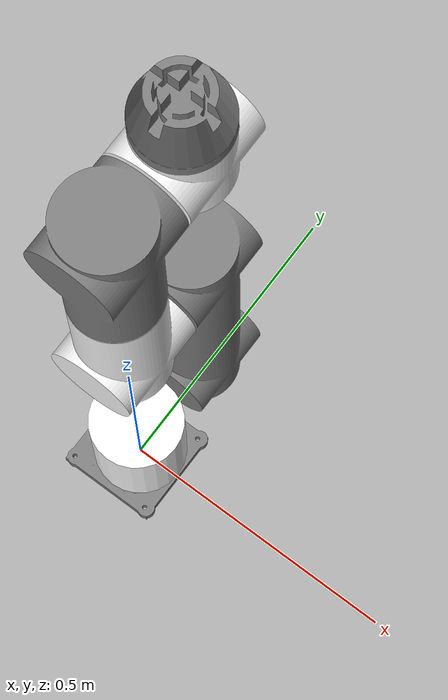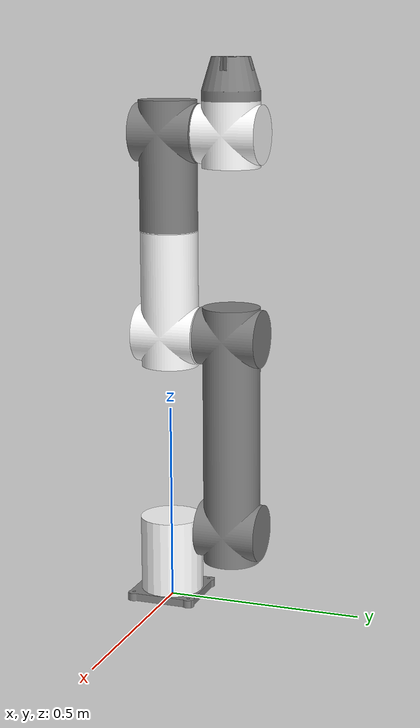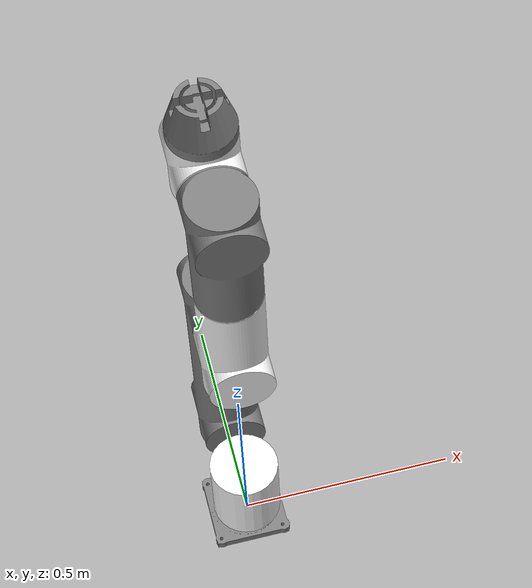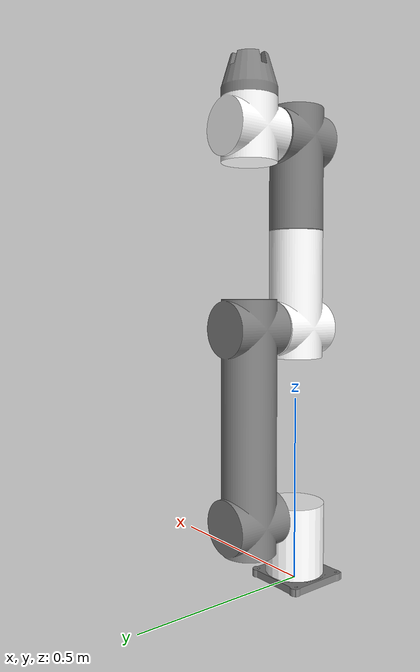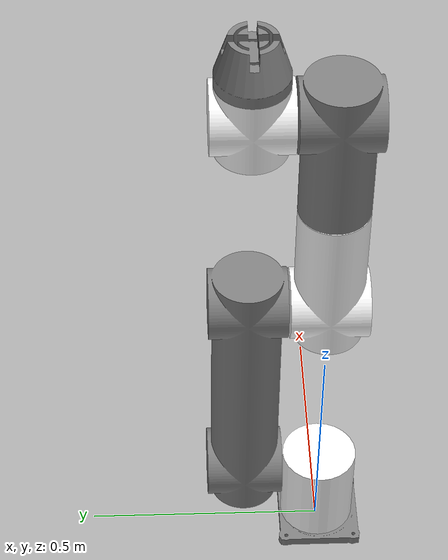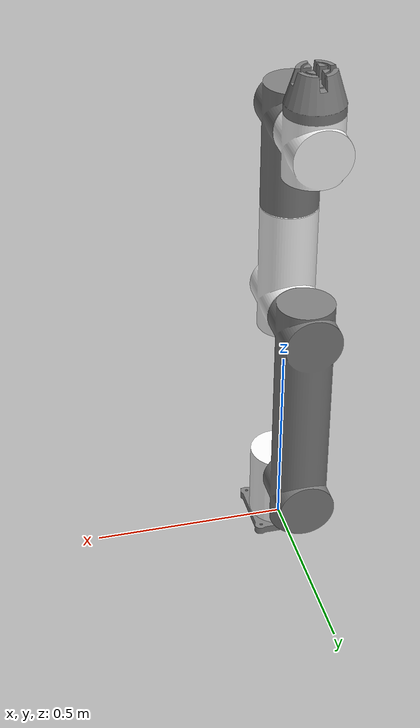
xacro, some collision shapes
<?xml version="1.0"?>
<robot xmlns:xacro="http://www.ros.org/wiki/xacro" name="armA" >

  <xacro:arg name="color"   default="blue"/>
  <xacro:arg name="gripper" default="none"/>
  <xacro:arg name="namespace" default=""/>

  <xacro:include filename="$(find arm_01)/description/xacro/armA_core.xacro" />
  <xacro:armA namespace="$(arg namespace)"/>

  <!-- World fixed joint-->
  <link name="world" />
  <joint name="world_fixed" type="fixed">
    <origin xyz="0 0 0" rpy="0 0 0"/>
    <parent link="world"/>
    <child link="base_0"/>
  </joint>

</robot>

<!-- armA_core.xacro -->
<robot name="armA" xmlns:xacro="http://www.ros.org/wiki/xacro">

    <xacro:include filename="$(find arm_01)/description/xacro/armA.gazebo_config_control.xacro" />
    <xacro:include filename="$(find arm_01)/description/xacro/armA.transmission.xacro" />
    <xacro:include filename="$(find arm_01)/description/xacro/armA.internal_config.xacro" />
    <xacro:include filename="$(find arm_01)/description/xacro/armA.bumper_config.xacro" />

    <xacro:macro name="armA" params="namespace">

        <!-- Base -->
        <link name="base_0">
            <inertial>
                <mass value="3.635"/>
                <origin xyz="4e-06   -0.001     0.082"/>
                <inertia ixx="0.02216" ixy="5.8e-06" ixz="6.2e-06" iyy="0.02"
                    iyz="-5.3e-05"
                    izz="0.02"/>
            </inertial>
            <visual>
                <origin rpy="0 0 0" xyz="0 0 0" />
                <geometry>
                    <mesh filename="file:///$(find arm_01)/description/meshes/armA/armA_0.stl"
                        scale="0.004 0.004 0.004" />
                </geometry>
                <material name="gray">
                    <color rgba="0.5 0.5 0.5 1"/>
                </material>
            </visual>
            <collision>
                <geometry>
                    <mesh filename="file:///$(find arm_01)/description/meshes/armA/armA_0.stl"
                        scale="0.004 0.004 0.004" />
                </geometry>
              </collision>
        </link>

        <!-- joint 1 -->
        <joint name="joint1" type="revolute">
            <parent link="base_0" />
            <child link="link1" />
            <origin rpy="0 0 0" xyz="0 0 0.114" />
            <axis xyz="0 0 1" />
            <limit effort="411" lower="-6.2832" upper="6.2832" velocity="3.1416"/>
            <dynamics damping="60.0" friction="4.0" />
        </joint>

        <!-- Link 1 -->
        <link name="link1">
            <inertial>
                <mass value="7.9"/>
                <origin xyz="4.4e-05    0.029982    -0.01112"/>
                <inertia ixx="0.046" ixy="1.28e-05" ixz="-3.6e-05" iyy="0.03"
                    iyz="-0.003"
                    izz="0.04"/>
            </inertial>
            <collision>
                <geometry>
                    <cylinder radius="0.08" length="0.2"/>
                </geometry>
            </collision>
            <visual>
                <origin rpy="0 0 0" xyz="0 0 0" />
                <geometry>
                    <mesh filename="file:///$(find arm_01)/description/meshes/armA/armA_1.stl"
                        scale="0.004 0.004 0.004" />
                </geometry>
                <material name="white">
                    <color rgba="1 1 1 1"/>
                </material>
            </visual>
        </link>

        <!-- joint2 -->
        <!-- origin rpy="0 -1.571 -1.571" xyz="0 0.040 0" / -->
        <joint name="joint2" type="revolute">
            <parent link="link1" />
            <child link="link2" />
            <origin rpy="0 0 0" xyz="0 0.082 0.080" />
            <axis xyz="0 1 0" />
            <limit effort="411" lower="-6.2832" upper="6.2832" velocity="3.1416"/>
            <dynamics damping="50.0" friction="3.0" />
        </joint>

        <!-- Link 2 -->
        <link name="link2">
            <inertial>
                <mass value="10.985"/>
                <origin xyz="0.2    0.0014     0.13"/>
                <inertia ixx="0.04" ixy="-0.005" ixz="-0.01" iyy="0.7" iyz="-2.8e-05"
                    izz="0.67"/>
            </inertial>
            <collision>
                <origin rpy="0 -1.571 0" xyz="0.3 0 0.1525" />
                <geometry>
                    <cylinder radius="0.08" length="0.6"/>
                </geometry>
            </collision>
            <visual>
                <origin rpy="0 0 0" xyz="0 0.082 -0.082" />
                <geometry>
                    <mesh filename="file:///$(find arm_01)/description/meshes/armA/armA_2.stl"
                        scale="0.004 0.004 0.004" />
                </geometry>
                <material name="gray">
                    <color rgba="0.5 0.5 0.5 1"/>
                </material>
            </visual>
        </link>

        <joint name="joint3" type="revolute">
            <parent link="link2" />
            <child link="link3" />
            <origin rpy="0 0 0" xyz="0 -0.082 0.500" />
            <axis xyz="0 1 0" />
            <limit effort="194" lower="-2.7925" upper="2.7925" velocity="3.1416"/>
            <dynamics damping="40.0" friction="2.0"/>
        </joint>

        <!-- cylinder radius="0.08" length="0.2"/ -->

        <link name="link3">
            <inertial>
                <mass value="2.881"/>
                <origin xyz="8.5e-05   -0.0025    0.03"/>
                <inertia ixx="0.013" ixy="-5.4e-06" ixz="1.64e-05" iyy="0.01"
                    iyz="-0.0002"
                    izz="0.008"/>
            </inertial>
            <collision>
                <geometry>
                    <mesh filename="file:///$(find arm_01)/description/meshes/armA/armA_3.stl"
                        scale="0.004 0.004 0.004" />
                </geometry>
            </collision>
            <visual>
                <origin rpy="0 0 0" xyz="0 0 -0.080" />
                <geometry>
                    <mesh filename="file:///$(find arm_01)/description/meshes/armA/armA_3.stl"
                        scale="0.004 0.004 0.004" />
                </geometry>
                <material name="white">
                    <color rgba="1 1 1 1"/>
                </material>
            </visual>
        </link>

        <!-- joint4 -->
        <joint name="joint4" type="revolute">
            <parent link="link3" />
            <child link="link4" />
            <origin rpy="0 0 0" xyz="0 0 0.262" />
            <axis xyz="0 0 1" />
            <limit effort="50" lower="-6.2832" upper="6.2832" velocity="6.2832"/>
            <dynamics damping="20.0" friction="1.0" />
        </joint>

        <link name="link4">
            <inertial>
                <mass value="3.273"/>
                <origin xyz="-9.6e-05    0.085    -0.14"/>
                <inertia ixx="0.12" ixy="2.4e-05" ixz="2.5e-05" iyy="0.11" iyz="-0.028"
                    izz="0.017"/>
            </inertial>
            <collision>
                <origin rpy="-0.46 0 0" xyz="0 0.075 -0.2" />
                <geometry>
                    <cylinder radius="0.05" length="0.4"/>
                </geometry>
            </collision>
            <visual>
                <origin rpy="0 0 0" xyz="0 0 0" />
                <geometry>
                    <mesh filename="file:///$(find arm_01)/description/meshes/armA/armA_4.stl"
                        scale="0.004 0.004 0.004" />
                </geometry>
                <material name="gray">
                    <color rgba="0.5 0.5 0.5 1"/>
                </material>
            </visual>
        </link>

        <!-- origin rpy="-1.571 0 0" xyz="0 0 0" / -->

        <joint name="joint5" type="revolute">
            <parent link="link4" />
            <child link="link5" />
            <origin rpy="0 0 0" xyz="0 0.082 0.24" />
            <axis xyz="0 1 0" />
            <limit effort="50" lower="-6.2832" upper="6.2832" velocity="6.2832"/>
            <dynamics damping="10.0" friction="1.0" />
        </joint>

        <link name="link5">
            <inertial>
                <mass value="2.141"/>
                <origin xyz="0.0001   -0.003     0.015"/>
                <inertia ixx="0.013" ixy="-4.7e-06" ixz="8.6e-06" iyy="0.007"
                    iyz="-6.0e-05"
                    izz="0.009"/>
            </inertial>
            <collision>
                <origin rpy="1.571 0 0" xyz="0 0 0" />
                <geometry>
                    <cylinder radius="0.06" length="0.15"/>
                </geometry>
            </collision>
            <visual>
                <origin rpy="0 0 0" xyz="0 0.082 -0.08" />
                <geometry>
                    <mesh filename="file:///$(find arm_01)/description/meshes/armA/armA_5.stl"
                        scale="0.004 0.004 0.004" />
                </geometry>
                <material name="white">
                    <color rgba="1 1 1 1"/>
                </material>
            </visual>
        </link>

        <joint name="joint6" type="revolute">
            <parent link="link5" />
            <child link="link6" />
            <origin rpy="0 0 0" xyz="0 0.082 0.08" />
            <axis xyz="0 0 1" />
            <limit effort="50" lower="-6.2832" upper="6.2832" velocity="6.2832"/>
            <dynamics damping="10.0" friction="1.0" />
        </joint>

        <link name="link6">
            <inertial>
                <mass value="0.784"/>
                <origin xyz="-1.9e-05      -6e-06    -0.05"/>
                <inertia ixx="0.0067" ixy="5.24e-06" ixz="2.5e-06" iyy="0.0048"
                    iyz="8.37e-06"
                    izz="0.006"/>
            </inertial>
            <visual>
                <origin rpy="0 0 0" xyz="0 0 0" />
                <geometry>
                    <mesh filename="file:///$(find arm_01)/description/meshes/armA/armA_6.stl"
                        scale="0.004 0.004 0.004" />
                </geometry>
                <material name="gray">
                    <color rgba="0.5 0.5 0.5 1"/>
                </material>
            </visual>
            <collision>
                <geometry>
                      <mesh filename="file:///$(find arm_01)/description/meshes/armA/armA_6.stl"
                        scale="0.004 0.004 0.004" />
                </geometry>
              </collision>
        </link>

        <!-- Gazebo Colors -->
        <gazebo reference="base_0">
            <material>Gazebo/Gray</material>
        </gazebo>
        <gazebo reference="link1">
            <material>Gazebo/White</material>
        </gazebo>
        <gazebo reference="link2">
            <material>Gazebo/Gray</material>
        </gazebo>
        <gazebo reference="link3">
            <material>Gazebo/White</material>
        </gazebo>
        <gazebo reference="link4">
            <material>Gazebo/Gray</material>
        </gazebo>
        <gazebo reference="link5">
            <material>Gazebo/White</material>
        </gazebo>
        <gazebo reference="link6">
            <material>Gazebo/Gray</material>
        </gazebo>

        <!-- the following lines instantiates all the info described in the files:
         macro.gazebo_config_control.xacro, transmissions,  internal_config, macro.bumper_config  by david-->
        <xacro:config_ctr_gazebo />
        <xacro:dsr_transmission />
        <xacro:dsr_config_coeff />
        <xacro:bumper_ctr_sensor />

    </xacro:macro>
</robot>
